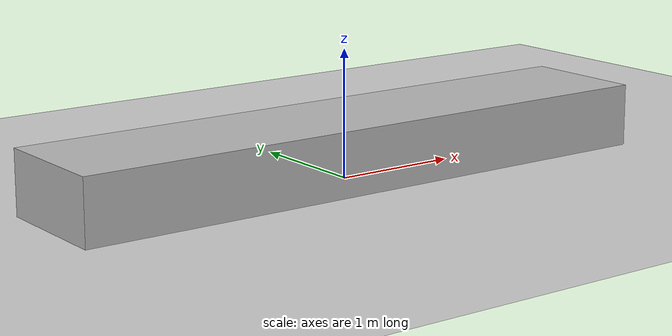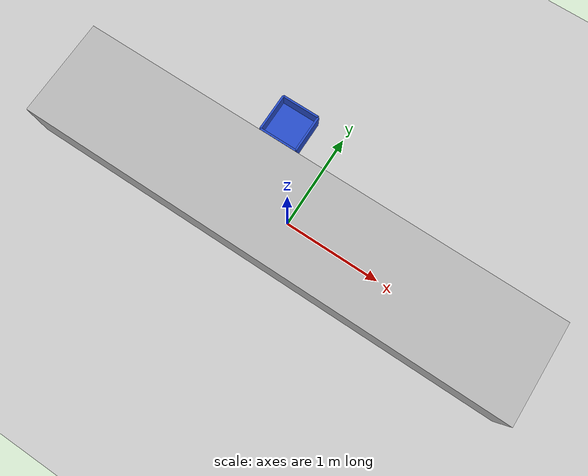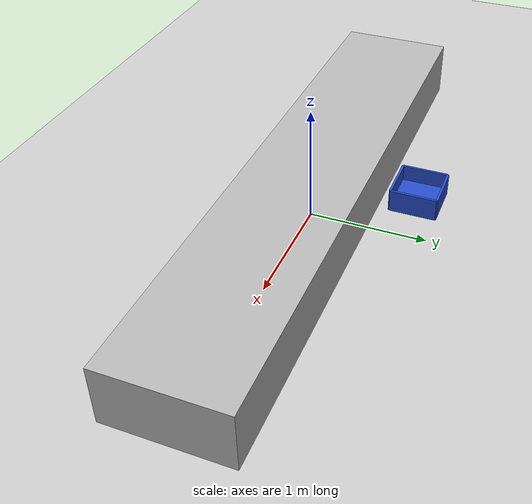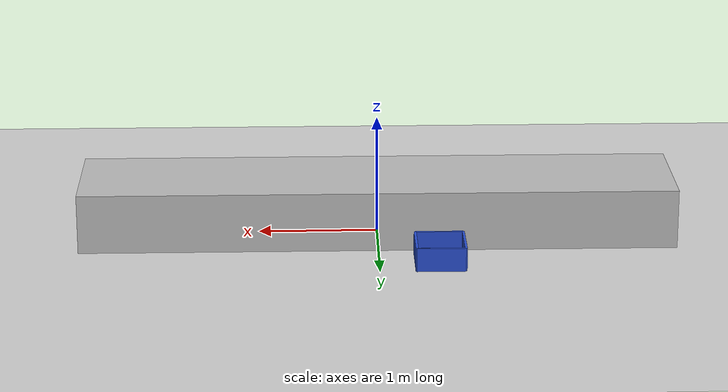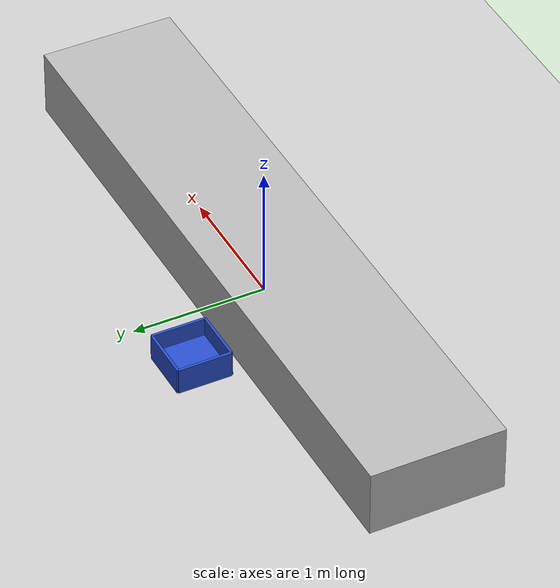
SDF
<sdf version="1.6">
 <world name="default">
  <light name="sun" type="directional">
   <pose>0 0 10 0 -0 0</pose>
   <diffuse>0.8 0.8 0.8 1</diffuse>
   <specular>0.1 0.1 0.1 1</specular>
   <attenuation>
    <range>1000</range>
    <constant>0.9</constant>
    <linear>0.01</linear>
    <quadratic>0.001</quadratic>
   </attenuation>
   <direction>-0.5 0.5 -1</direction>
  </light>
  <model name="ground_plane">
   <static>1</static>
   <link name="link">
    <collision name="collision">
     <geometry><plane><normal>0 0 1</normal><size>100 100</size></plane></geometry>
     <surface><friction><ode><mu>100</mu><mu2>50</mu2></ode></friction></surface>
    </collision>
    <visual name="visual">
     <cast_shadows>0</cast_shadows>
     <geometry><plane><normal>0 0 1</normal><size>100 100</size></plane></geometry>
     <material>
      <script><uri>file://media/materials/scripts/gazebo.material</uri><name>Gazebo/Grey</name></script>
     </material>
    </visual>
   </link>
  </model>
  <gravity>0 0 -9.8</gravity>
  <magnetic_field>6e-06 2.3e-05 -4.2e-05</magnetic_field>
  <atmosphere type="adiabatic"/>
  <physics name="default_physics" default="0" type="ode">
   <max_step_size>0.001</max_step_size>
   <real_time_factor>1</real_time_factor>
   <real_time_update_rate>1000</real_time_update_rate>
  </physics>
  <scene><ambient>0.4 0.4 0.4 1</ambient><background>0.7 0.7 0.7 1</background><shadows>1</shadows></scene>
  <spherical_coordinates>
   <surface_model>EARTH_WGS84</surface_model>
   <latitude_deg>0</latitude_deg>
   <longitude_deg>0</longitude_deg>
   <elevation>0</elevation>
   <heading_deg>0</heading_deg>
  </spherical_coordinates>
  <model name="conveyor_belt">
   <link name="conveyor">
    <inertial>
     <pose>0 0 0.25 0 -0 0</pose>
     <mass>2.5</mass>
     <inertia><ixx>1</ixx><ixy>0</ixy><ixz>0</ixz><iyy>1</iyy><iyz>0</iyz><izz>1</izz></inertia>
    </inertial>
    <collision name="conveyor_collision">
     <pose>0 0 0.25 0 -0 0</pose>
     <geometry><box><size>5 1 0.5</size></box></geometry>
    </collision>
    <visual name="conveyor_visual">
     <pose>0 0 0.25 0 -0 0</pose>
     <geometry><box><size>5 1 0.5</size></box></geometry>
    </visual>
   </link>
   <joint name="joint_fix" type="revolute">
    <child>conveyor</child>
    <parent>world</parent>
    <axis>
     <limit><lower>0</lower><upper>0</upper></limit>
     <dynamics>
      <damping>0</damping>
      <friction>0</friction>
      <spring_reference>0</spring_reference>
      <spring_stiffness>0</spring_stiffness>
     </dynamics>
     <use_parent_model_frame>1</use_parent_model_frame>
     <xyz>0 0 1</xyz>
    </axis>
   </joint>
  </model>
  <model name="bin">
   <link name="bottom">
    <inertial>
     <pose>0 0 0.04 0 -0 0</pose>
     <mass>0.25</mass>
     <inertia><ixx>0.0091</ixx><ixy>0</ixy><ixz>0</ixz><iyy>0.0091</iyy><iyz>0</iyz><izz>0.013</izz></inertia>
    </inertial>
    <collision name="bottom_collision">
     <geometry><box><size>0.4 0.4 0.02</size></box></geometry>
     <surface><friction><ode><mu>10</mu><mu2>10</mu2></ode></friction></surface>
    </collision>
    <collision name="bottom_fixed_joint_lump__back_collision_1">
     <pose>0 0.2 0.05 0 -0 0</pose>
     <geometry><box><size>0.4 0.02 0.2</size></box></geometry>
     <surface><friction><ode><mu>10</mu><mu2>10</mu2></ode></friction></surface>
    </collision>
    <collision name="bottom_fixed_joint_lump__front_collision_2">
     <pose>0 -0.2 0.05 0 -0 0</pose>
     <geometry><box><size>0.4 0.02 0.2</size></box></geometry>
     <surface><friction><ode><mu>10</mu><mu2>10</mu2></ode></friction></surface>
    </collision>
    <collision name="bottom_fixed_joint_lump__left_collision_3">
     <pose>-0.2 0 0.05 0 -0 0</pose>
     <geometry><box><size>0.02 0.4 0.2</size></box></geometry>
     <surface><friction><ode><mu>10</mu><mu2>10</mu2></ode></friction></surface>
    </collision>
    <collision name="bottom_fixed_joint_lump__right_collision_4">
     <pose>0.2 0 0.05 0 -0 0</pose>
     <geometry><box><size>0.02 0.4 0.2</size></box></geometry>
     <surface><friction><ode><mu>10</mu><mu2>10</mu2></ode></friction></surface>
    </collision>
    <visual name="bottom_visual">
     <geometry><box><size>0.4 0.4 0.02</size></box></geometry>
     <material>
      <script><name>Gazebo/Blue</name><uri>file://media/materials/scripts/gazebo.material</uri></script>
     </material>
    </visual>
    <visual name="bottom_fixed_joint_lump__back_visual_1">
     <pose>0 0.2 0.05 0 -0 0</pose>
     <geometry><box><size>0.4 0.02 0.2</size></box></geometry>
     <material>
      <script><name>Gazebo/Blue</name><uri>file://media/materials/scripts/gazebo.material</uri></script>
     </material>
    </visual>
    <visual name="bottom_fixed_joint_lump__front_visual_2">
     <pose>0 -0.2 0.05 0 -0 0</pose>
     <geometry><box><size>0.4 0.02 0.2</size></box></geometry>
     <material>
      <script><name>Gazebo/Blue</name><uri>file://media/materials/scripts/gazebo.material</uri></script>
     </material>
    </visual>
    <visual name="bottom_fixed_joint_lump__left_visual_3">
     <pose>-0.2 0 0.05 0 -0 0</pose>
     <geometry><box><size>0.02 0.4 0.2</size></box></geometry>
     <material>
      <script><name>Gazebo/Blue</name><uri>file://media/materials/scripts/gazebo.material</uri></script>
     </material>
    </visual>
    <visual name="bottom_fixed_joint_lump__right_visual_4">
     <pose>0.2 0 0.05 0 -0 0</pose>
     <geometry><box><size>0.02 0.4 0.2</size></box></geometry>
     <material>
      <script><name>Gazebo/Blue</name><uri>file://media/materials/scripts/gazebo.material</uri></script>
     </material>
    </visual>
   </link>
   <joint name="joint_fix" type="revolute">
    <child>bottom</child>
    <parent>world</parent>
    <axis>
     <limit><lower>0</lower><upper>0</upper></limit>
     <dynamics>
      <damping>0</damping>
      <friction>0</friction>
      <spring_reference>0</spring_reference>
      <spring_stiffness>0</spring_stiffness>
     </dynamics>
     <use_parent_model_frame>1</use_parent_model_frame>
     <xyz>0 0 1</xyz>
    </axis>
   </joint>
   <pose>-0.5 0.8 0.05 0 -0 0</pose>
  </model>
 </world>
</sdf>
